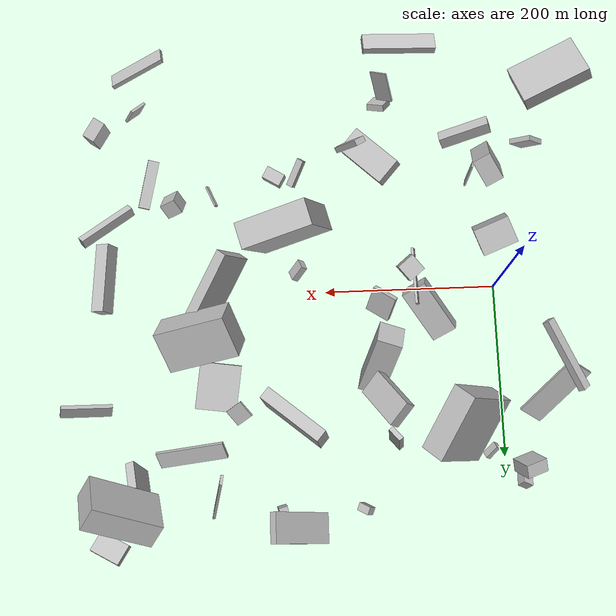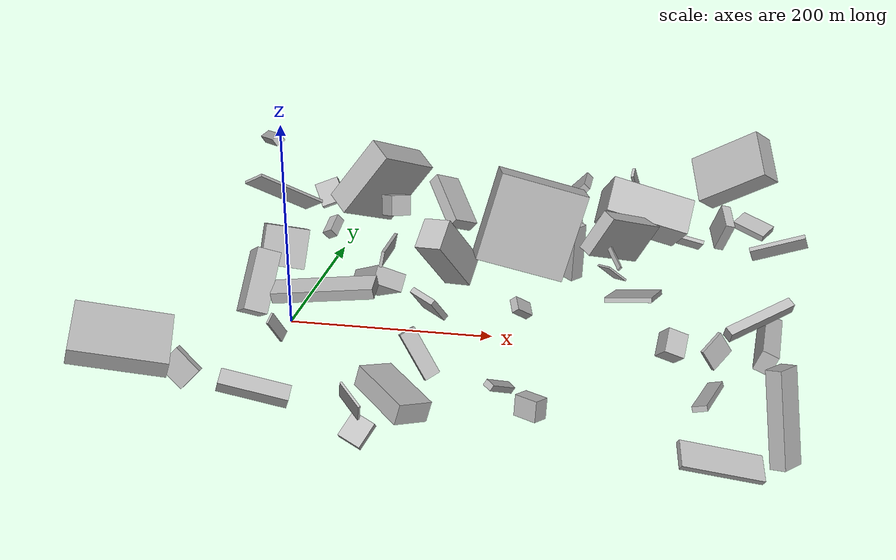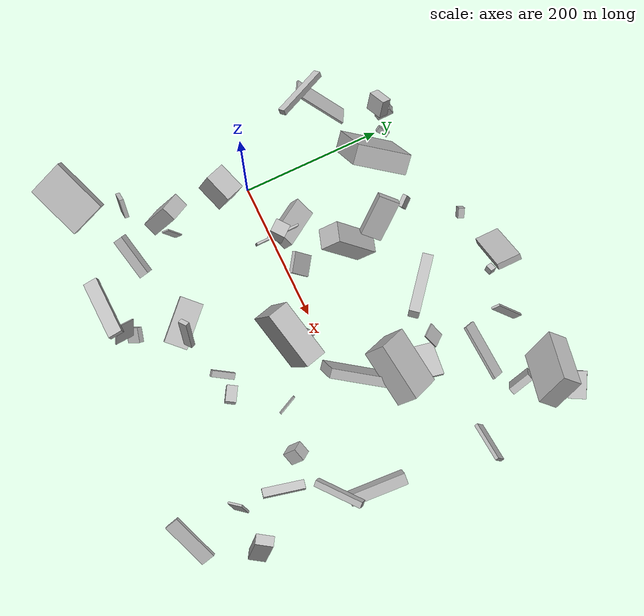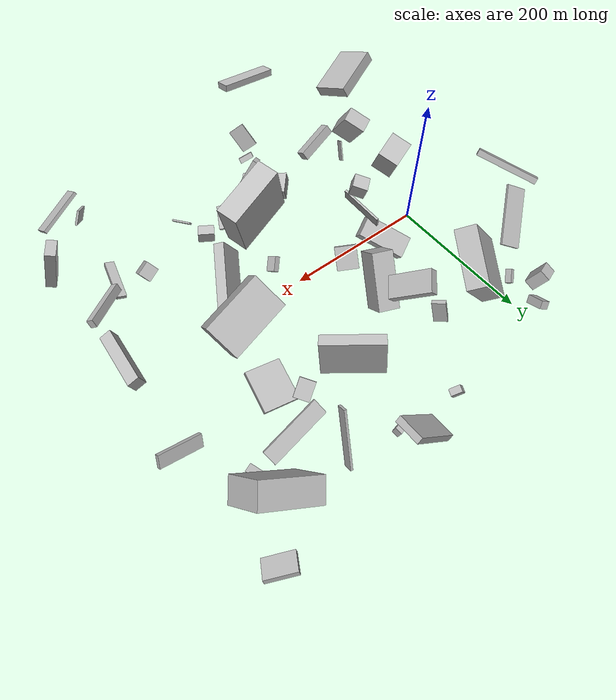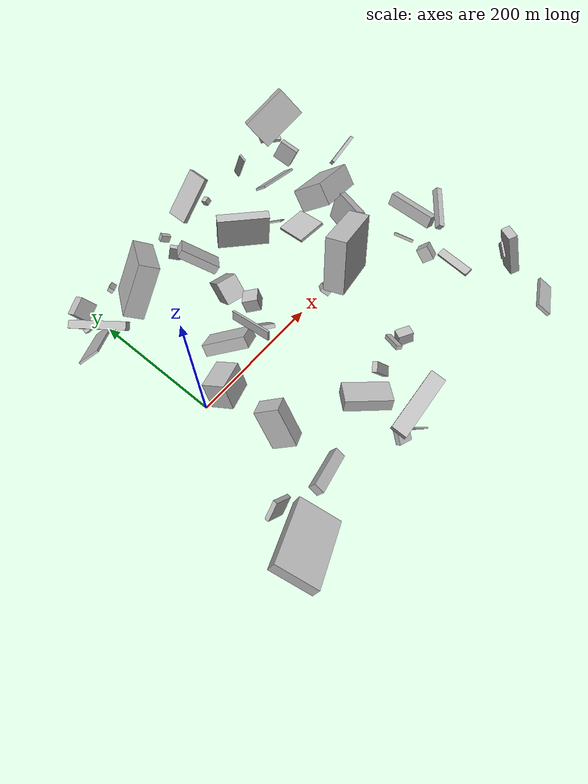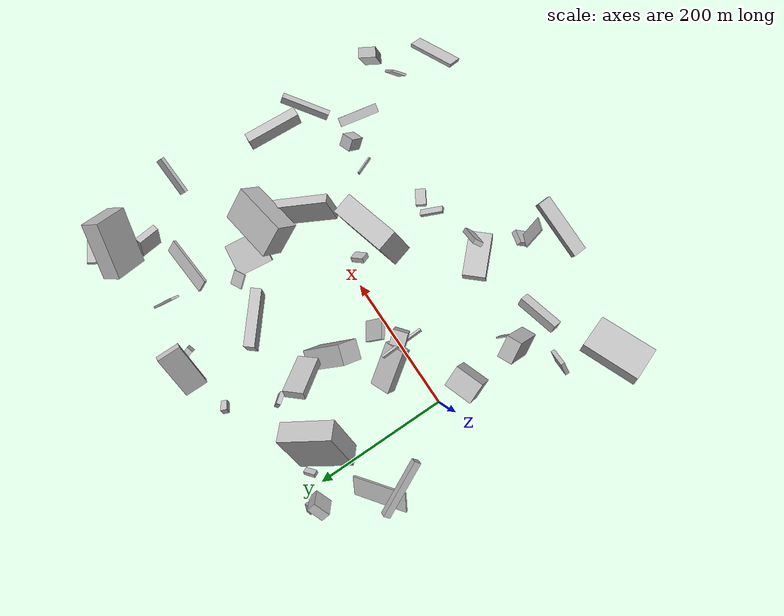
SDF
<sdf version="1.6">
 <world name="default">
  <scene>
   <sky><clouds><speed>12</speed></clouds></sky>
   <ambient>0.4 0.4 0.4 1</ambient>
   <background>0.7 0.7 0.7 1</background>
   <shadows>1</shadows>
  </scene>
  <gravity>0 0 -9.8066</gravity>
  <magnetic_field>6e-06 2.3e-05 -4.2e-05</magnetic_field>
  <physics default="0" name="default_physics" type="ode">
   <ode>
    <solver>
     <type>quick</type>
     <iters>10</iters>
     <sor>1.0</sor>
     <use_dynamic_moi_rescaling>0</use_dynamic_moi_rescaling>
    </solver>
    <constraints>
     <cfm>0</cfm>
     <erp>0.2</erp>
     <contact_max_correcting_vel>100</contact_max_correcting_vel>
     <contact_surface_layer>0.001</contact_surface_layer>
    </constraints>
   </ode>
   <max_step_size>0.004</max_step_size>
   <real_time_factor>1</real_time_factor>
   <real_time_update_rate>250</real_time_update_rate>
  </physics>
  <light name="sun" type="directional">
   <pose>0 0 10 0 0 0</pose>
   <diffuse>0.8 0.8 0.8 1</diffuse>
   <specular>0.2 0.2 0.2 1</specular>
   <attenuation>
    <range>1000</range>
    <constant>0.9</constant>
    <linear>0.01</linear>
    <quadratic>0.001</quadratic>
   </attenuation>
   <direction>-0.5 0.1 -0.9</direction>
  </light>
  <model name="building_1">
   <static>0</static>
   <pose>28.161544604706812 -189.17026281923995 30.370755485857888 2.795060604183542 0.5413295162102651 -1.5450354952315017</pose>
   <link name="link">
    <gravity>0</gravity>
    <pose>0 0 7.0 0 0 0</pose>
    <collision name="collision"><geometry><box><size>15 61 14</size></box></geometry></collision>
    <visual name="visual">
     <cast_shadows>0</cast_shadows>
     <geometry><box><size>15 61 14</size></box></geometry>
     <material>
      <script>
       <uri>model://HANNAS_wall/materials/scripts</uri>
       <uri>model://HANNAS_wall/materials/textures</uri>
       <name>vrc/HANNAS_wall</name>
      </script>
     </material>
    </visual>
   </link>
  </model>
  <model name="building_2">
   <static>0</static>
   <pose>389.9206185692192 255.63173610834397 80.05536592548073 0.9420594547273208 0.5215308143031965 0.9097508072725978</pose>
   <link name="link">
    <gravity>0</gravity>
    <pose>0 0 40.0 0 0 0</pose>
    <collision name="collision"><geometry><box><size>29 51 80</size></box></geometry></collision>
    <visual name="visual">
     <cast_shadows>0</cast_shadows>
     <geometry><box><size>29 51 80</size></box></geometry>
     <material>
      <script>
       <uri>model://HANNAS_wall/materials/scripts</uri>
       <uri>model://HANNAS_wall/materials/textures</uri>
       <name>vrc/HANNAS_wall</name>
      </script>
     </material>
    </visual>
   </link>
  </model>
  <model name="building_3">
   <static>0</static>
   <pose>307.56900404401875 8.730589053287654 89.46987865946228 -0.4087574163254591 -0.3660569121300688 -2.1200978539219153</pose>
   <link name="link">
    <gravity>0</gravity>
    <pose>0 0 20.5 0 0 0</pose>
    <collision name="collision"><geometry><box><size>80 13 41</size></box></geometry></collision>
    <visual name="visual">
     <cast_shadows>0</cast_shadows>
     <geometry><box><size>80 13 41</size></box></geometry>
     <material>
      <script>
       <uri>model://HANNAS_wall/materials/scripts</uri>
       <uri>model://HANNAS_wall/materials/textures</uri>
       <name>vrc/HANNAS_wall</name>
      </script>
     </material>
    </visual>
   </link>
  </model>
  <model name="building_4">
   <static>0</static>
   <pose>100.82503641995956 -29.48680520537814 85.00379999818104 1.6568997338898528 -0.19124170925554407 -3.1220548451894823</pose>
   <link name="link">
    <gravity>0</gravity>
    <pose>0 0 31.0 0 0 0</pose>
    <collision name="collision"><geometry><box><size>3 15 62</size></box></geometry></collision>
    <visual name="visual">
     <cast_shadows>0</cast_shadows>
     <geometry><box><size>3 15 62</size></box></geometry>
     <material>
      <script>
       <uri>model://HANNAS_wall/materials/scripts</uri>
       <uri>model://HANNAS_wall/materials/textures</uri>
       <name>vrc/HANNAS_wall</name>
      </script>
     </material>
    </visual>
   </link>
  </model>
  <model name="building_5">
   <static>0</static>
   <pose>141.0329862541218 135.2938377751467 89.4446861103483 2.4827437577944784 -0.3672419493344079 -2.2657127092850624</pose>
   <link name="link">
    <gravity>0</gravity>
    <pose>0 0 6.5 0 0 0</pose>
    <collision name="collision"><geometry><box><size>30 59 13</size></box></geometry></collision>
    <visual name="visual">
     <cast_shadows>0</cast_shadows>
     <geometry><box><size>30 59 13</size></box></geometry>
     <material>
      <script>
       <uri>model://HANNAS_wall/materials/scripts</uri>
       <uri>model://HANNAS_wall/materials/textures</uri>
       <name>vrc/HANNAS_wall</name>
      </script>
     </material>
    </visual>
   </link>
  </model>
  <model name="building_6">
   <static>0</static>
   <pose>117.48514590316393 -138.41082652243583 22.62669906955127 -1.7238721980469245 -0.22513833260522176 -2.3253389490454053</pose>
   <link name="link">
    <gravity>0</gravity>
    <pose>0 0 33.0 0 0 0</pose>
    <collision name="collision"><geometry><box><size>33 19 66</size></box></geometry></collision>
    <visual name="visual">
     <cast_shadows>0</cast_shadows>
     <geometry><box><size>33 19 66</size></box></geometry>
     <material>
      <script>
       <uri>model://HANNAS_wall/materials/scripts</uri>
       <uri>model://HANNAS_wall/materials/textures</uri>
       <name>vrc/HANNAS_wall</name>
      </script>
     </material>
    </visual>
   </link>
  </model>
  <model name="building_7">
   <static>0</static>
   <pose>408.5139269941089 -198.03933022572684 97.69146795952838 1.9150868603402191 -1.0148154640754448 -2.685427055122039</pose>
   <link name="link">
    <gravity>0</gravity>
    <pose>0 0 1.5 0 0 0</pose>
    <collision name="collision"><geometry><box><size>20 22 3</size></box></geometry></collision>
    <visual name="visual">
     <cast_shadows>0</cast_shadows>
     <geometry><box><size>20 22 3</size></box></geometry>
     <material>
      <script>
       <uri>model://HANNAS_wall/materials/scripts</uri>
       <uri>model://HANNAS_wall/materials/textures</uri>
       <name>vrc/HANNAS_wall</name>
      </script>
     </material>
    </visual>
   </link>
  </model>
  <model name="building_8">
   <static>0</static>
   <pose>303.14840191944364 139.91414171920087 15.434754661317374 0.2841150147011506 -0.7101257244640138 -2.652468389371658</pose>
   <link name="link">
    <gravity>0</gravity>
    <pose>0 0 1.0 0 0 0</pose>
    <collision name="collision"><geometry><box><size>26 21 2</size></box></geometry></collision>
    <visual name="visual">
     <cast_shadows>0</cast_shadows>
     <geometry><box><size>26 21 2</size></box></geometry>
     <material>
      <script>
       <uri>model://HANNAS_wall/materials/scripts</uri>
       <uri>model://HANNAS_wall/materials/textures</uri>
       <name>vrc/HANNAS_wall</name>
      </script>
     </material>
    </visual>
   </link>
  </model>
  <model name="building_9">
   <static>0</static>
   <pose>153.4013502716568 83.60799717152608 49.67148297788555 1.726833522351445 -0.8399830900018644 -2.0061651011322628</pose>
   <link name="link">
    <gravity>0</gravity>
    <pose>0 0 14.5 0 0 0</pose>
    <collision name="collision"><geometry><box><size>76 33 29</size></box></geometry></collision>
    <visual name="visual">
     <cast_shadows>0</cast_shadows>
     <geometry><box><size>76 33 29</size></box></geometry>
     <material>
      <script>
       <uri>model://HANNAS_wall/materials/scripts</uri>
       <uri>model://HANNAS_wall/materials/textures</uri>
       <name>vrc/HANNAS_wall</name>
      </script>
     </material>
    </visual>
   </link>
  </model>
  <model name="building_10">
   <static>0</static>
   <pose>269.7310119331298 124.91309671458919 41.63478937919671 0.25020146070035093 -1.4779821340885766 -0.9424290642881876</pose>
   <link name="link">
    <gravity>0</gravity>
    <pose>0 0 40.0 0 0 0</pose>
    <collision name="collision"><geometry><box><size>60 15 80</size></box></geometry></collision>
    <visual name="visual">
     <cast_shadows>0</cast_shadows>
     <geometry><box><size>60 15 80</size></box></geometry>
     <material>
      <script>
       <uri>model://HANNAS_wall/materials/scripts</uri>
       <uri>model://HANNAS_wall/materials/textures</uri>
       <name>vrc/HANNAS_wall</name>
      </script>
     </material>
    </visual>
   </link>
  </model>
  <model name="building_11">
   <static>0</static>
   <pose>10.750339634800582 -137.58543057211602 72.26668414603992 0.402239053812893 0.45956676014379655 2.157780117260995</pose>
   <link name="link">
    <gravity>0</gravity>
    <pose>0 0 27.5 0 0 0</pose>
    <collision name="collision"><geometry><box><size>32 21 55</size></box></geometry></collision>
    <visual name="visual">
     <cast_shadows>0</cast_shadows>
     <geometry><box><size>32 21 55</size></box></geometry>
     <material>
      <script>
       <uri>model://HANNAS_wall/materials/scripts</uri>
       <uri>model://HANNAS_wall/materials/textures</uri>
       <name>vrc/HANNAS_wall</name>
      </script>
     </material>
    </visual>
   </link>
  </model>
  <model name="building_12">
   <static>0</static>
   <pose>117.2211199812947 -225.57149011141334 21.037779992479468 2.062641928893992 0.7537883921023228 1.6377536130747121</pose>
   <link name="link">
    <gravity>0</gravity>
    <pose>0 0 10.5 0 0 0</pose>
    <collision name="collision"><geometry><box><size>8 23 21</size></box></geometry></collision>
    <visual name="visual">
     <cast_shadows>0</cast_shadows>
     <geometry><box><size>8 23 21</size></box></geometry>
     <material>
      <script>
       <uri>model://HANNAS_wall/materials/scripts</uri>
       <uri>model://HANNAS_wall/materials/textures</uri>
       <name>vrc/HANNAS_wall</name>
      </script>
     </material>
    </visual>
   </link>
  </model>
  <model name="building_13">
   <static>0</static>
   <pose>31.371874541931874 -117.02444002177995 41.151477903766924 0.10803316185817899 0.5786122894559158 -1.8184991826312416</pose>
   <link name="link">
    <gravity>0</gravity>
    <pose>0 0 14.5 0 0 0</pose>
    <collision name="collision"><geometry><box><size>11 2 29</size></box></geometry></collision>
    <visual name="visual">
     <cast_shadows>0</cast_shadows>
     <geometry><box><size>11 2 29</size></box></geometry>
     <material>
      <script>
       <uri>model://HANNAS_wall/materials/scripts</uri>
       <uri>model://HANNAS_wall/materials/textures</uri>
       <name>vrc/HANNAS_wall</name>
      </script>
     </material>
    </visual>
   </link>
  </model>
  <model name="building_14">
   <static>0</static>
   <pose>77.57067344520797 167.41378923097494 124.00881964984757 2.5953471726534216 -0.3782811821577248 -2.0868691054088417</pose>
   <link name="link">
    <gravity>0</gravity>
    <pose>0 0 39.0 0 0 0</pose>
    <collision name="collision"><geometry><box><size>77 28 78</size></box></geometry></collision>
    <visual name="visual">
     <cast_shadows>0</cast_shadows>
     <geometry><box><size>77 28 78</size></box></geometry>
     <material>
      <script>
       <uri>model://HANNAS_wall/materials/scripts</uri>
       <uri>model://HANNAS_wall/materials/textures</uri>
       <name>vrc/HANNAS_wall</name>
      </script>
     </material>
    </visual>
   </link>
  </model>
  <model name="building_15">
   <static>0</static>
   <pose>257.26579667312785 -142.74162086976438 15.889676705823891 3.114127282089035 0.1356171836242563 1.0303224472531973</pose>
   <link name="link">
    <gravity>0</gravity>
    <pose>0 0 9.5 0 0 0</pose>
    <collision name="collision"><geometry><box><size>15 23 19</size></box></geometry></collision>
    <visual name="visual">
     <cast_shadows>0</cast_shadows>
     <geometry><box><size>15 23 19</size></box></geometry>
     <material>
      <script>
       <uri>model://HANNAS_wall/materials/scripts</uri>
       <uri>model://HANNAS_wall/materials/textures</uri>
       <name>vrc/HANNAS_wall</name>
      </script>
     </material>
    </visual>
   </link>
  </model>
  <model name="building_16">
   <static>0</static>
   <pose>-18.25181141199233 218.69461909544094 56.49288080103336 -1.0735110990159464 0.31681440198311855 -2.8131472132784427</pose>
   <link name="link">
    <gravity>0</gravity>
    <pose>0 0 7.5 0 0 0</pose>
    <collision name="collision"><geometry><box><size>26 26 15</size></box></geometry></collision>
    <visual name="visual">
     <cast_shadows>0</cast_shadows>
     <geometry><box><size>26 26 15</size></box></geometry>
     <material>
      <script>
       <uri>model://HANNAS_wall/materials/scripts</uri>
       <uri>model://HANNAS_wall/materials/textures</uri>
       <name>vrc/HANNAS_wall</name>
      </script>
     </material>
    </visual>
   </link>
  </model>
  <model name="building_17">
   <static>0</static>
   <pose>324.1028541580005 81.6621428280024 12.070677052363216 -1.81254764540279 -0.12576472216617982 -0.12951032046146002</pose>
   <link name="link">
    <gravity>0</gravity>
    <pose>0 0 27.5 0 0 0</pose>
    <collision name="collision"><geometry><box><size>48 5 55</size></box></geometry></collision>
    <visual name="visual">
     <cast_shadows>0</cast_shadows>
     <geometry><box><size>48 5 55</size></box></geometry>
     <material>
      <script>
       <uri>model://HANNAS_wall/materials/scripts</uri>
       <uri>model://HANNAS_wall/materials/textures</uri>
       <name>vrc/HANNAS_wall</name>
      </script>
     </material>
    </visual>
   </link>
  </model>
  <model name="building_18">
   <static>0</static>
   <pose>230.89742850163387 -53.38589334778456 97.62255994276694 -0.10492676421428186 0.30220205391230104 0.2343809722136189</pose>
   <link name="link">
    <gravity>0</gravity>
    <pose>0 0 40.0 0 0 0</pose>
    <collision name="collision"><geometry><box><size>80 29 80</size></box></geometry></collision>
    <visual name="visual">
     <cast_shadows>0</cast_shadows>
     <geometry><box><size>80 29 80</size></box></geometry>
     <material>
      <script>
       <uri>model://HANNAS_wall/materials/scripts</uri>
       <uri>model://HANNAS_wall/materials/textures</uri>
       <name>vrc/HANNAS_wall</name>
      </script>
     </material>
    </visual>
   </link>
  </model>
  <model name="building_19">
   <static>0</static>
   <pose>79.66752641133702 25.492314700916037 29.48137454968219 -0.48629527789937227 -0.4254263423170085 -0.935292875313002</pose>
   <link name="link">
    <gravity>0</gravity>
    <pose>0 0 9.0 0 0 0</pose>
    <collision name="collision"><geometry><box><size>66 30 18</size></box></geometry></collision>
    <visual name="visual">
     <cast_shadows>0</cast_shadows>
     <geometry><box><size>66 30 18</size></box></geometry>
     <material>
      <script>
       <uri>model://HANNAS_wall/materials/scripts</uri>
       <uri>model://HANNAS_wall/materials/textures</uri>
       <name>vrc/HANNAS_wall</name>
      </script>
     </material>
    </visual>
   </link>
  </model>
  <model name="building_20">
   <static>0</static>
   <pose>465.9063932565966 276.6235507511974 18.23618883322747 0.7300167873294667 -1.2536608740359074 -1.2353142473464438</pose>
   <link name="link">
    <gravity>0</gravity>
    <pose>0 0 19.0 0 0 0</pose>
    <collision name="collision"><geometry><box><size>7 24 38</size></box></geometry></collision>
    <visual name="visual">
     <cast_shadows>0</cast_shadows>
     <geometry><box><size>7 24 38</size></box></geometry>
     <material>
      <script>
       <uri>model://HANNAS_wall/materials/scripts</uri>
       <uri>model://HANNAS_wall/materials/textures</uri>
       <name>vrc/HANNAS_wall</name>
      </script>
     </material>
    </visual>
   </link>
  </model>
  <model name="building_21">
   <static>0</static>
   <pose>160.04793675669154 252.87918124531888 15.649865422005409 0.5610633304042771 0.18869313540117616 1.192796827072922</pose>
   <link name="link">
    <gravity>0</gravity>
    <pose>0 0 5.5 0 0 0</pose>
    <collision name="collision"><geometry><box><size>9 15 11</size></box></geometry></collision>
    <visual name="visual">
     <cast_shadows>0</cast_shadows>
     <geometry><box><size>9 15 11</size></box></geometry>
     <material>
      <script>
       <uri>model://HANNAS_wall/materials/scripts</uri>
       <uri>model://HANNAS_wall/materials/textures</uri>
       <name>vrc/HANNAS_wall</name>
      </script>
     </material>
    </visual>
   </link>
  </model>
  <model name="building_22">
   <static>0</static>
   <pose>447.70450953286627 -75.0753499452917 68.34945587549765 -1.0684193835400382 -0.20577558172269977 0.6590382722042518</pose>
   <link name="link">
    <gravity>0</gravity>
    <pose>0 0 4.5 0 0 0</pose>
    <collision name="collision"><geometry><box><size>68 11 9</size></box></geometry></collision>
    <visual name="visual">
     <cast_shadows>0</cast_shadows>
     <geometry><box><size>68 11 9</size></box></geometry>
     <material>
      <script>
       <uri>model://HANNAS_wall/materials/scripts</uri>
       <uri>model://HANNAS_wall/materials/textures</uri>
       <name>vrc/HANNAS_wall</name>
      </script>
     </material>
    </visual>
   </link>
  </model>
  <model name="building_23">
   <static>0</static>
   <pose>328.92336258808905 84.54871515563937 98.67512595552805 0.4784830199503647 -0.866495736583324 1.3504293380319377</pose>
   <link name="link">
    <gravity>0</gravity>
    <pose>0 0 24.0 0 0 0</pose>
    <collision name="collision"><geometry><box><size>34 80 48</size></box></geometry></collision>
    <visual name="visual">
     <cast_shadows>0</cast_shadows>
     <geometry><box><size>34 80 48</size></box></geometry>
     <material>
      <script>
       <uri>model://HANNAS_wall/materials/scripts</uri>
       <uri>model://HANNAS_wall/materials/textures</uri>
       <name>vrc/HANNAS_wall</name>
      </script>
     </material>
    </visual>
   </link>
  </model>
  <model name="building_24">
   <static>0</static>
   <pose>405.82042136194 -134.55638691368833 22.249156969688805 0.09873337916141074 0.2919778860883941 2.9458865343977387</pose>
   <link name="link">
    <gravity>0</gravity>
    <pose>0 0 2.5 0 0 0</pose>
    <collision name="collision"><geometry><box><size>13 58 5</size></box></geometry></collision>
    <visual name="visual">
     <cast_shadows>0</cast_shadows>
     <geometry><box><size>13 58 5</size></box></geometry>
     <material>
      <script>
       <uri>model://HANNAS_wall/materials/scripts</uri>
       <uri>model://HANNAS_wall/materials/textures</uri>
       <name>vrc/HANNAS_wall</name>
      </script>
     </material>
    </visual>
   </link>
  </model>
  <model name="building_25">
   <static>0</static>
   <pose>-47.32909847780068 102.26296459992787 151.57023950312418 -1.0298858288239436 -0.23723622926558 -1.0909345142090507</pose>
   <link name="link">
    <gravity>0</gravity>
    <pose>0 0 5.0 0 0 0</pose>
    <collision name="collision"><geometry><box><size>80 8 10</size></box></geometry></collision>
    <visual name="visual">
     <cast_shadows>0</cast_shadows>
     <geometry><box><size>80 8 10</size></box></geometry>
     <material>
      <script>
       <uri>model://HANNAS_wall/materials/scripts</uri>
       <uri>model://HANNAS_wall/materials/textures</uri>
       <name>vrc/HANNAS_wall</name>
      </script>
     </material>
    </visual>
   </link>
  </model>
  <model name="building_26">
   <static>0</static>
   <pose>367.8066068189194 -94.19206732059733 47.75943830580947 -0.8546825849140388 -0.42703889570896897 -2.8494531279438102</pose>
   <link name="link">
    <gravity>0</gravity>
    <pose>0 0 9.0 0 0 0</pose>
    <collision name="collision"><geometry><box><size>19 22 18</size></box></geometry></collision>
    <visual name="visual">
     <cast_shadows>0</cast_shadows>
     <geometry><box><size>19 22 18</size></box></geometry>
     <material>
      <script>
       <uri>model://HANNAS_wall/materials/scripts</uri>
       <uri>model://HANNAS_wall/materials/textures</uri>
       <name>vrc/HANNAS_wall</name>
      </script>
     </material>
    </visual>
   </link>
  </model>
  <model name="building_27">
   <static>0</static>
   <pose>133.17275012960343 17.184245711598177 19.12126823110414 -0.8682240651212345 0.15779625026596783 -0.6047371032263228</pose>
   <link name="link">
    <gravity>0</gravity>
    <pose>0 0 3.0 0 0 0</pose>
    <collision name="collision"><geometry><box><size>30 33 6</size></box></geometry></collision>
    <visual name="visual">
     <cast_shadows>0</cast_shadows>
     <geometry><box><size>30 33 6</size></box></geometry>
     <material>
      <script>
       <uri>model://HANNAS_wall/materials/scripts</uri>
       <uri>model://HANNAS_wall/materials/textures</uri>
       <name>vrc/HANNAS_wall</name>
      </script>
     </material>
    </visual>
   </link>
  </model>
  <model name="building_28">
   <static>0</static>
   <pose>-31.549848012109223 -217.39490557221816 74.94499673775367 -1.2947034443750856 -0.39664362233586753 1.8297988768472435</pose>
   <link name="link">
    <gravity>0</gravity>
    <pose>0 0 40.0 0 0 0</pose>
    <collision name="collision"><geometry><box><size>54 17 80</size></box></geometry></collision>
    <visual name="visual">
     <cast_shadows>0</cast_shadows>
     <geometry><box><size>54 17 80</size></box></geometry>
     <material>
      <script>
       <uri>model://HANNAS_wall/materials/scripts</uri>
       <uri>model://HANNAS_wall/materials/textures</uri>
       <name>vrc/HANNAS_wall</name>
      </script>
     </material>
    </visual>
   </link>
  </model>
  <model name="building_29">
   <static>0</static>
   <pose>316.5013151138879 182.95713613399 54.81833371375919 -1.914347878710677 -0.6495071398160087 -1.2582687243110375</pose>
   <link name="link">
    <gravity>0</gravity>
    <pose>0 0 40.0 0 0 0</pose>
    <collision name="collision"><geometry><box><size>20 4 80</size></box></geometry></collision>
    <visual name="visual">
     <cast_shadows>0</cast_shadows>
     <geometry><box><size>20 4 80</size></box></geometry>
     <material>
      <script>
       <uri>model://HANNAS_wall/materials/scripts</uri>
       <uri>model://HANNAS_wall/materials/textures</uri>
       <name>vrc/HANNAS_wall</name>
      </script>
     </material>
    </visual>
   </link>
  </model>
  <model name="building_30">
   <static>0</static>
   <pose>409.3161829851335 211.1474814876803 47.57293489122897 -1.8174717744907876 0.38597192746863346 -1.3692767341712906</pose>
   <link name="link">
    <gravity>0</gravity>
    <pose>0 0 5.0 0 0 0</pose>
    <collision name="collision"><geometry><box><size>32 34 10</size></box></geometry></collision>
    <visual name="visual">
     <cast_shadows>0</cast_shadows>
     <geometry><box><size>32 34 10</size></box></geometry>
     <material>
      <script>
       <uri>model://HANNAS_wall/materials/scripts</uri>
       <uri>model://HANNAS_wall/materials/textures</uri>
       <name>vrc/HANNAS_wall</name>
      </script>
     </material>
    </visual>
   </link>
  </model>
  <model name="building_31">
   <static>0</static>
   <pose>109.73838275217693 -236.14596389677862 149.9074076642623 1.770240482612498 -0.11007460812654592 0.026691077094125274</pose>
   <link name="link">
    <gravity>0</gravity>
    <pose>0 0 9.5 0 0 0</pose>
    <collision name="collision"><geometry><box><size>80 9 19</size></box></geometry></collision>
    <visual name="visual">
     <cast_shadows>0</cast_shadows>
     <geometry><box><size>80 9 19</size></box></geometry>
     <material>
      <script>
       <uri>model://HANNAS_wall/materials/scripts</uri>
       <uri>model://HANNAS_wall/materials/textures</uri>
       <name>vrc/HANNAS_wall</name>
      </script>
     </material>
    </visual>
   </link>
  </model>
  <model name="building_32">
   <static>0</static>
   <pose>8.938981842891558 -46.69658685611302 79.14766833836805 0.3263261887468866 -0.21926096419965474 -2.8013798207376817</pose>
   <link name="link">
    <gravity>0</gravity>
    <pose>0 0 18.5 0 0 0</pose>
    <collision name="collision"><geometry><box><size>40 30 37</size></box></geometry></collision>
    <visual name="visual">
     <cast_shadows>0</cast_shadows>
     <geometry><box><size>40 30 37</size></box></geometry>
     <material>
      <script>
       <uri>model://HANNAS_wall/materials/scripts</uri>
       <uri>model://HANNAS_wall/materials/textures</uri>
       <name>vrc/HANNAS_wall</name>
      </script>
     </material>
    </visual>
   </link>
  </model>
  <model name="building_33">
   <static>0</static>
   <pose>464.7598782681143 -21.77724447378883 20.95122181384325 1.1786471641155996 0.008665541981738998 -1.6375986868040657</pose>
   <link name="link">
    <gravity>0</gravity>
    <pose>0 0 8.0 0 0 0</pose>
    <collision name="collision"><geometry><box><size>80 20 16</size></box></geometry></collision>
    <visual name="visual">
     <cast_shadows>0</cast_shadows>
     <geometry><box><size>80 20 16</size></box></geometry>
     <material>
      <script>
       <uri>model://HANNAS_wall/materials/scripts</uri>
       <uri>model://HANNAS_wall/materials/textures</uri>
       <name>vrc/HANNAS_wall</name>
      </script>
     </material>
    </visual>
   </link>
  </model>
  <model name="building_34">
   <static>0</static>
   <pose>469.0112805858217 -197.2118260732576 44.465324565263685 -2.6097425360134308 -1.307404383035384 2.042076045056116</pose>
   <link name="link">
    <gravity>0</gravity>
    <pose>0 0 7.0 0 0 0</pose>
    <collision name="collision"><geometry><box><size>80 24 14</size></box></geometry></collision>
    <visual name="visual">
     <cast_shadows>0</cast_shadows>
     <geometry><box><size>80 24 14</size></box></geometry>
     <material>
      <script>
       <uri>model://HANNAS_wall/materials/scripts</uri>
       <uri>model://HANNAS_wall/materials/textures</uri>
       <name>vrc/HANNAS_wall</name>
      </script>
     </material>
    </visual>
   </link>
  </model>
  <model name="building_35">
   <static>0</static>
   <pose>-44.82718610567961 133.73406045596172 84.67656858990759 0.5729645655777359 -0.5497605721458655 -2.3954887354819614</pose>
   <link name="link">
    <gravity>0</gravity>
    <pose>0 0 1.5 0 0 0</pose>
    <collision name="collision"><geometry><box><size>80 29 3</size></box></geometry></collision>
    <visual name="visual">
     <cast_shadows>0</cast_shadows>
     <geometry><box><size>80 29 3</size></box></geometry>
     <material>
      <script>
       <uri>model://HANNAS_wall/materials/scripts</uri>
       <uri>model://HANNAS_wall/materials/textures</uri>
       <name>vrc/HANNAS_wall</name>
      </script>
     </material>
    </visual>
   </link>
  </model>
  <model name="building_36">
   <static>0</static>
   <pose>102.16243827549094 8.992303606294584 125.872606069193 0.5058711658174379 -1.2921349467753638 1.7625589099783172</pose>
   <link name="link">
    <gravity>0</gravity>
    <pose>0 0 10.0 0 0 0</pose>
    <collision name="collision"><geometry><box><size>19 20 20</size></box></geometry></collision>
    <visual name="visual">
     <cast_shadows>0</cast_shadows>
     <geometry><box><size>19 20 20</size></box></geometry>
     <material>
      <script>
       <uri>model://HANNAS_wall/materials/scripts</uri>
       <uri>model://HANNAS_wall/materials/textures</uri>
       <name>vrc/HANNAS_wall</name>
      </script>
     </material>
    </visual>
   </link>
  </model>
  <model name="building_37">
   <static>0</static>
   <pose>25.736821627257 198.6077138889916 79.71827092115372 2.3017465656588967 0.4758166211836774 0.7771985241766569</pose>
   <link name="link">
    <gravity>0</gravity>
    <pose>0 0 4.0 0 0 0</pose>
    <collision name="collision"><geometry><box><size>17 6 8</size></box></geometry></collision>
    <visual name="visual">
     <cast_shadows>0</cast_shadows>
     <geometry><box><size>17 6 8</size></box></geometry>
     <material>
      <script>
       <uri>model://HANNAS_wall/materials/scripts</uri>
       <uri>model://HANNAS_wall/materials/textures</uri>
       <name>vrc/HANNAS_wall</name>
      </script>
     </material>
    </visual>
   </link>
  </model>
  <model name="building_38">
   <static>0</static>
   <pose>254.96381227453048 254.86601114929087 29.272281230742763 -0.48112104597817257 -1.2289050231581613 2.2731720865677656</pose>
   <link name="link">
    <gravity>0</gravity>
    <pose>0 0 4.5 0 0 0</pose>
    <collision name="collision"><geometry><box><size>10 10 9</size></box></geometry></collision>
    <visual name="visual">
     <cast_shadows>0</cast_shadows>
     <geometry><box><size>10 10 9</size></box></geometry>
     <material>
      <script>
       <uri>model://HANNAS_wall/materials/scripts</uri>
       <uri>model://HANNAS_wall/materials/textures</uri>
       <name>vrc/HANNAS_wall</name>
      </script>
     </material>
    </visual>
   </link>
  </model>
  <model name="building_39">
   <static>0</static>
   <pose>236.9102266386658 -129.42223377703928 15.45135300648142 -1.0871429982475564 -0.34071805829964164 2.477912860711658</pose>
   <link name="link">
    <gravity>0</gravity>
    <pose>0 0 17.0 0 0 0</pose>
    <collision name="collision"><geometry><box><size>9 6 34</size></box></geometry></collision>
    <visual name="visual">
     <cast_shadows>0</cast_shadows>
     <geometry><box><size>9 6 34</size></box></geometry>
     <material>
      <script>
       <uri>model://HANNAS_wall/materials/scripts</uri>
       <uri>model://HANNAS_wall/materials/textures</uri>
       <name>vrc/HANNAS_wall</name>
      </script>
     </material>
    </visual>
   </link>
  </model>
  <model name="building_40">
   <static>0</static>
   <pose>323.4836160500313 229.09829087200887 65.8519931062868 0.25651209450824336 -1.0364231492270215 -1.9697583092690447</pose>
   <link name="link">
    <gravity>0</gravity>
    <pose>0 0 6.0 0 0 0</pose>
    <collision name="collision"><geometry><box><size>76 3 12</size></box></geometry></collision>
    <visual name="visual">
     <cast_shadows>0</cast_shadows>
     <geometry><box><size>76 3 12</size></box></geometry>
     <material>
      <script>
       <uri>model://HANNAS_wall/materials/scripts</uri>
       <uri>model://HANNAS_wall/materials/textures</uri>
       <name>vrc/HANNAS_wall</name>
      </script>
     </material>
    </visual>
   </link>
  </model>
  <model name="building_41">
   <static>0</static>
   <pose>234.0839160355472 270.22302070903163 46.29948996587367 -3.0543395447165755 -0.792574391911803 -0.07042407949674538</pose>
   <link name="link">
    <gravity>0</gravity>
    <pose>0 0 4.5 0 0 0</pose>
    <collision name="collision"><geometry><box><size>80 34 9</size></box></geometry></collision>
    <visual name="visual">
     <cast_shadows>0</cast_shadows>
     <geometry><box><size>80 34 9</size></box></geometry>
     <material>
      <script>
       <uri>model://HANNAS_wall/materials/scripts</uri>
       <uri>model://HANNAS_wall/materials/textures</uri>
       <name>vrc/HANNAS_wall</name>
      </script>
     </material>
    </visual>
   </link>
  </model>
  <model name="building_42">
   <static>0</static>
   <pose>128.01500888307822 182.832290401566 56.95946227165845 0.2663544485835777 -0.13407712388225534 0.650126407883441</pose>
   <link name="link">
    <gravity>0</gravity>
    <pose>0 0 15.0 0 0 0</pose>
    <collision name="collision"><geometry><box><size>6 17 30</size></box></geometry></collision>
    <visual name="visual">
     <cast_shadows>0</cast_shadows>
     <geometry><box><size>6 17 30</size></box></geometry>
     <material>
      <script>
       <uri>model://HANNAS_wall/materials/scripts</uri>
       <uri>model://HANNAS_wall/materials/textures</uri>
       <name>vrc/HANNAS_wall</name>
      </script>
     </material>
    </visual>
   </link>
  </model>
  <model name="building_43">
   <static>0</static>
   <pose>318.92221604302 -86.6822165099142 124.65196040959692 -2.1106068424862996 0.3063605403652424 -1.1586057735241464</pose>
   <link name="link">
    <gravity>0</gravity>
    <pose>0 0 1.0 0 0 0</pose>
    <collision name="collision"><geometry><box><size>28 4 2</size></box></geometry></collision>
    <visual name="visual">
     <cast_shadows>0</cast_shadows>
     <geometry><box><size>28 4 2</size></box></geometry>
     <material>
      <script>
       <uri>model://HANNAS_wall/materials/scripts</uri>
       <uri>model://HANNAS_wall/materials/textures</uri>
       <name>vrc/HANNAS_wall</name>
      </script>
     </material>
    </visual>
   </link>
  </model>
  <model name="building_44">
   <static>0</static>
   <pose>413.8105165197642 -263.8472319503828 49.74918344866137 2.6082520763165773 -0.9455571151145736 -0.7685955277025216</pose>
   <link name="link">
    <gravity>0</gravity>
    <pose>0 0 11.0 0 0 0</pose>
    <collision name="collision"><geometry><box><size>5 69 22</size></box></geometry></collision>
    <visual name="visual">
     <cast_shadows>0</cast_shadows>
     <geometry><box><size>5 69 22</size></box></geometry>
     <material>
      <script>
       <uri>model://HANNAS_wall/materials/scripts</uri>
       <uri>model://HANNAS_wall/materials/textures</uri>
       <name>vrc/HANNAS_wall</name>
      </script>
     </material>
    </visual>
   </link>
  </model>
  <model name="building_45">
   <static>0</static>
   <pose>176.07705604094937 -166.12467558032887 39.849284095932546 -0.42130894678025854 0.36297231538237834 2.0142312439706638</pose>
   <link name="link">
    <gravity>0</gravity>
    <pose>0 0 22.0 0 0 0</pose>
    <collision name="collision"><geometry><box><size>7 14 44</size></box></geometry></collision>
    <visual name="visual">
     <cast_shadows>0</cast_shadows>
     <geometry><box><size>7 14 44</size></box></geometry>
     <material>
      <script>
       <uri>model://HANNAS_wall/materials/scripts</uri>
       <uri>model://HANNAS_wall/materials/textures</uri>
       <name>vrc/HANNAS_wall</name>
      </script>
     </material>
    </visual>
   </link>
  </model>
  <model name="building_46">
   <static>0</static>
   <pose>-21.887397177178446 221.43838065335046 19.416944141563263 -2.628796129205991 0.474578749995645 -1.7062718921721372</pose>
   <link name="link">
    <gravity>0</gravity>
    <pose>0 0 5.5 0 0 0</pose>
    <collision name="collision"><geometry><box><size>24 13 11</size></box></geometry></collision>
    <visual name="visual">
     <cast_shadows>0</cast_shadows>
     <geometry><box><size>24 13 11</size></box></geometry>
     <material>
      <script>
       <uri>model://HANNAS_wall/materials/scripts</uri>
       <uri>model://HANNAS_wall/materials/textures</uri>
       <name>vrc/HANNAS_wall</name>
      </script>
     </material>
    </visual>
   </link>
  </model>
  <model name="building_47">
   <static>0</static>
   <pose>115.80049513470202 -232.87757638502836 56.73186825401459 -2.5817969632144546 -0.7790481434015194 -1.2610873097013464</pose>
   <link name="link">
    <gravity>0</gravity>
    <pose>0 0 12.5 0 0 0</pose>
    <collision name="collision"><geometry><box><size>36 2 25</size></box></geometry></collision>
    <visual name="visual">
     <cast_shadows>0</cast_shadows>
     <geometry><box><size>36 2 25</size></box></geometry>
     <material>
      <script>
       <uri>model://HANNAS_wall/materials/scripts</uri>
       <uri>model://HANNAS_wall/materials/textures</uri>
       <name>vrc/HANNAS_wall</name>
      </script>
     </material>
    </visual>
   </link>
  </model>
  <model name="building_48">
   <static>0</static>
   <pose>233.73831309549232 -19.848460505136316 43.901831911964514 -2.417967559808621 -0.5899886198384079 1.9194881487290059</pose>
   <link name="link">
    <gravity>0</gravity>
    <pose>0 0 4.0 0 0 0</pose>
    <collision name="collision"><geometry><box><size>14 20 8</size></box></geometry></collision>
    <visual name="visual">
     <cast_shadows>0</cast_shadows>
     <geometry><box><size>14 20 8</size></box></geometry>
     <material>
      <script>
       <uri>model://HANNAS_wall/materials/scripts</uri>
       <uri>model://HANNAS_wall/materials/textures</uri>
       <name>vrc/HANNAS_wall</name>
      </script>
     </material>
    </visual>
   </link>
  </model>
  <model name="building_49">
   <static>0</static>
   <pose>468.79922639027444 137.07803167513302 58.67543652150486 -2.575308938361761 -0.9571693134858611 -2.025890046927801</pose>
   <link name="link">
    <gravity>0</gravity>
    <pose>0 0 2.5 0 0 0</pose>
    <collision name="collision"><geometry><box><size>16 56 5</size></box></geometry></collision>
    <visual name="visual">
     <cast_shadows>0</cast_shadows>
     <geometry><box><size>16 56 5</size></box></geometry>
     <material>
      <script>
       <uri>model://HANNAS_wall/materials/scripts</uri>
       <uri>model://HANNAS_wall/materials/textures</uri>
       <name>vrc/HANNAS_wall</name>
      </script>
     </material>
    </visual>
   </link>
  </model>
  <model name="building_50">
   <static>0</static>
   <pose>-54.97030246390233 -170.02101483447186 20.661945768059553 0.759228819318865 0.10206667424537008 1.5231321798372741</pose>
   <link name="link">
    <gravity>0</gravity>
    <pose>0 0 13.0 0 0 0</pose>
    <collision name="collision"><geometry><box><size>6 28 26</size></box></geometry></collision>
    <visual name="visual">
     <cast_shadows>0</cast_shadows>
     <geometry><box><size>6 28 26</size></box></geometry>
     <material>
      <script>
       <uri>model://HANNAS_wall/materials/scripts</uri>
       <uri>model://HANNAS_wall/materials/textures</uri>
       <name>vrc/HANNAS_wall</name>
      </script>
     </material>
    </visual>
   </link>
  </model>
 </world>
</sdf>
